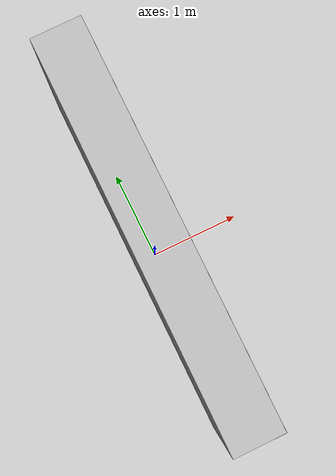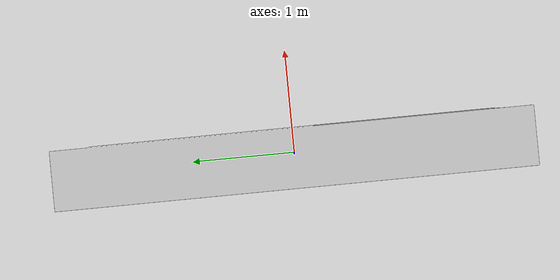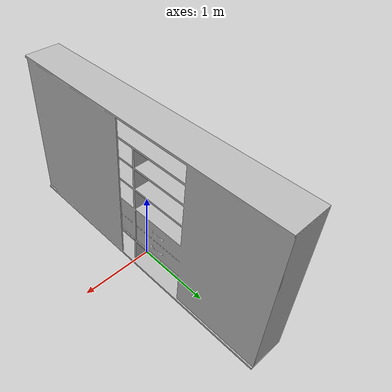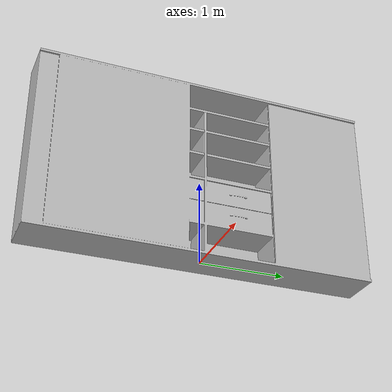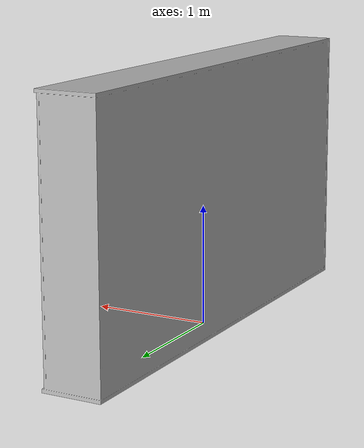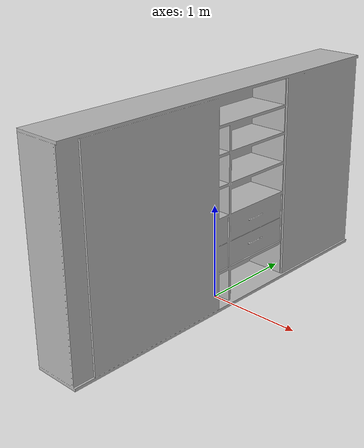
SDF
<?xml version='1.0'?>
<sdf version='1.4'>
  <model name='184'>
    <pose>0 0 0 0 0 0</pose>
    <static>true</static>
    <link name='link'>
      <collision name='collision'>
        <pose>0 0 0 0 0 0</pose>
        <geometry>
          <box>
            <size>0.5 4 2</size>
          </box>
        </geometry>
      </collision>
      <visual name='visual'>
        <pose>0 0 0 0 0 0</pose>
        <geometry>
          <mesh><uri>model://184/184.dae</uri></mesh>
        </geometry>
      </visual>
    </link>
  </model>
</sdf>
